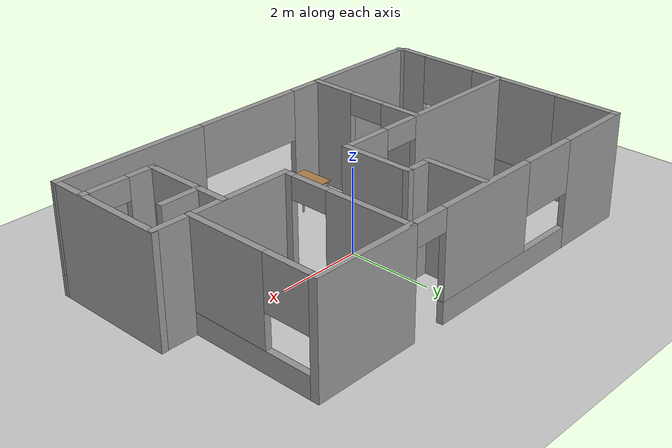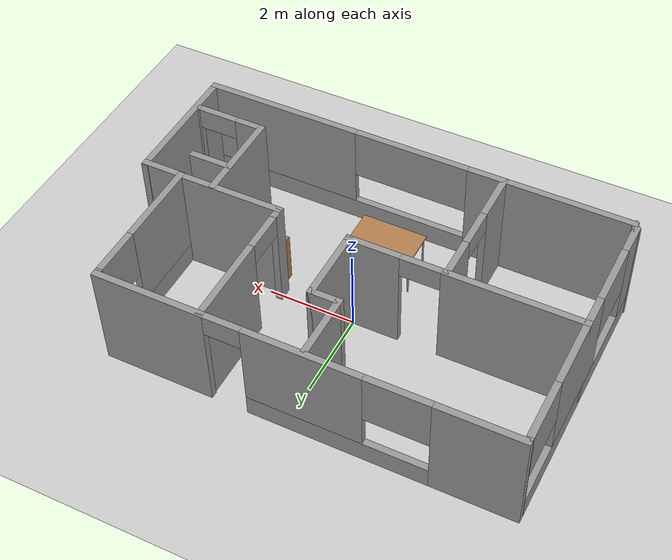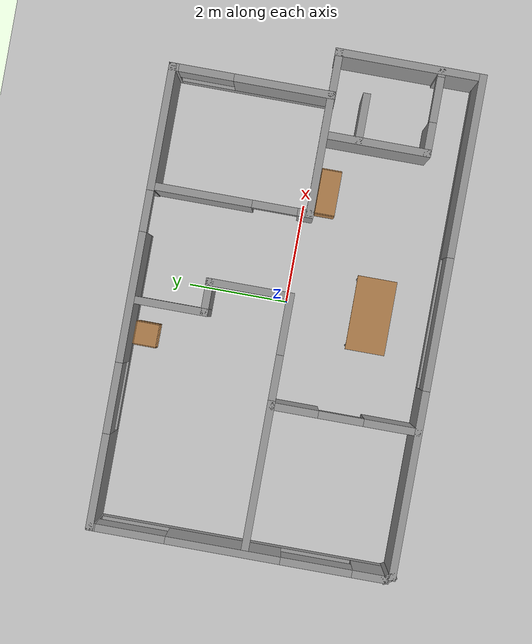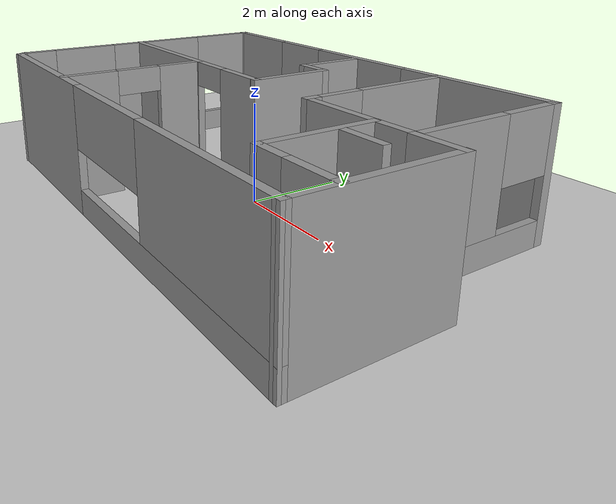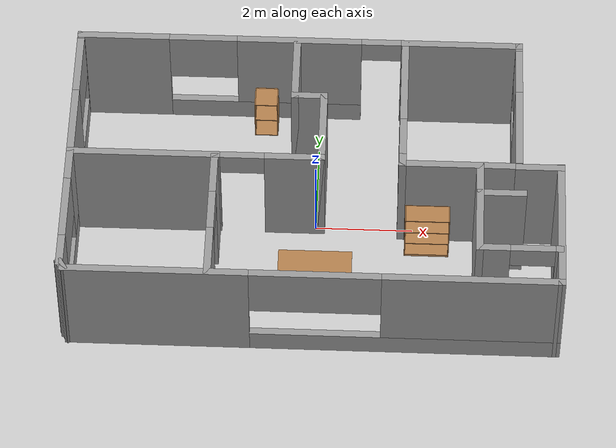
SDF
<sdf version="1.6">
 <world name="default">
  <light name="sun" type="directional">
   <pose>0 0 10 0 -0 0</pose>
   <diffuse>0.8 0.8 0.8 1</diffuse>
   <specular>0.2 0.2 0.2 1</specular>
   <attenuation>
    <range>1000</range>
    <constant>0.9</constant>
    <linear>0.01</linear>
    <quadratic>0.001</quadratic>
   </attenuation>
   <direction>-0.5 0.1 -0.9</direction>
  </light>
  <model name="ground_plane">
   <static>1</static>
   <link name="link">
    <collision name="collision">
     <geometry><plane><normal>0 0 1</normal><size>100 100</size></plane></geometry>
     <surface>
      <contact><collide_bitmask>65535</collide_bitmask></contact>
      <friction><ode><mu>100</mu><mu2>50</mu2></ode></friction>
     </surface>
    </collision>
    <visual name="visual">
     <cast_shadows>0</cast_shadows>
     <geometry><plane><normal>0 0 1</normal><size>100 100</size></plane></geometry>
     <material>
      <script><uri>file://media/materials/scripts/gazebo.material</uri><name>Gazebo/Grey</name></script>
     </material>
    </visual>
   </link>
  </model>
  <gravity>0 0 -9.8</gravity>
  <magnetic_field>6e-06 2.3e-05 -4.2e-05</magnetic_field>
  <atmosphere type="adiabatic"/>
  <physics name="default_physics" default="0" type="ode">
   <max_step_size>0.001</max_step_size>
   <real_time_factor>1</real_time_factor>
   <real_time_update_rate>1000</real_time_update_rate>
  </physics>
  <scene><ambient>0.4 0.4 0.4 1</ambient><background>0.7 0.7 0.7 1</background><shadows>1</shadows></scene>
  <spherical_coordinates>
   <surface_model>EARTH_WGS84</surface_model>
   <latitude_deg>0</latitude_deg>
   <longitude_deg>0</longitude_deg>
   <elevation>0</elevation>
   <heading_deg>0</heading_deg>
  </spherical_coordinates>
  <model name="HouseDoors">
   <pose>-0.013482 -0.00403 0 0 -0 0</pose>
   <include><static>true</static><uri>model://HouseDoors</uri></include>
  </model>
  <model name="bookshelf">
   <static>1</static>
   <link name="link">
    <inertial><mass>1</mass></inertial>
    <collision name="back">
     <pose>0 0.005 0.6 0 -0 0</pose>
     <geometry><box><size>0.9 0.01 1.2</size></box></geometry>
    </collision>
    <visual name="visual1">
     <pose>0 0.005 0.6 0 -0 0</pose>
     <geometry><box><size>0.9 0.01 1.2</size></box></geometry>
     <material>
      <script><uri>file://media/materials/scripts/gazebo.material</uri><name>Gazebo/Wood</name></script>
     </material>
    </visual>
    <collision name="left_side">
     <pose>0.45 -0.195 0.6 0 -0 0</pose>
     <geometry><box><size>0.02 0.4 1.2</size></box></geometry>
    </collision>
    <visual name="visual2">
     <pose>0.45 -0.195 0.6 0 -0 0</pose>
     <geometry><box><size>0.02 0.4 1.2</size></box></geometry>
     <material>
      <script><uri>file://media/materials/scripts/gazebo.material</uri><name>Gazebo/Wood</name></script>
     </material>
    </visual>
    <collision name="right_side">
     <pose>-0.45 -0.195 0.6 0 -0 0</pose>
     <geometry><box><size>0.02 0.4 1.2</size></box></geometry>
    </collision>
    <visual name="visual3">
     <pose>-0.45 -0.195 0.6 0 -0 0</pose>
     <geometry><box><size>0.02 0.4 1.2</size></box></geometry>
     <material>
      <script><uri>file://media/materials/scripts/gazebo.material</uri><name>Gazebo/Wood</name></script>
     </material>
    </visual>
    <collision name="bottom">
     <pose>0 -0.195 0.03 0 -0 0</pose>
     <geometry><box><size>0.88 0.4 0.06</size></box></geometry>
    </collision>
    <visual name="visual4">
     <pose>0 -0.195 0.03 0 -0 0</pose>
     <geometry><box><size>0.88 0.4 0.06</size></box></geometry>
     <material>
      <script><uri>file://media/materials/scripts/gazebo.material</uri><name>Gazebo/Wood</name></script>
     </material>
    </visual>
    <collision name="top">
     <pose>0 -0.195 1.19 0 -0 0</pose>
     <geometry><box><size>0.88 0.4 0.02</size></box></geometry>
    </collision>
    <visual name="visual5">
     <pose>0 -0.195 1.19 0 -0 0</pose>
     <geometry><box><size>0.88 0.4 0.02</size></box></geometry>
     <material>
      <script><uri>file://media/materials/scripts/gazebo.material</uri><name>Gazebo/Wood</name></script>
     </material>
    </visual>
    <collision name="low_shelf">
     <pose>0 -0.195 0.43 0 -0 0</pose>
     <geometry><box><size>0.88 0.4 0.02</size></box></geometry>
    </collision>
    <visual name="visual6">
     <pose>0 -0.195 0.43 0 -0 0</pose>
     <geometry><box><size>0.88 0.4 0.02</size></box></geometry>
     <material>
      <script><uri>file://media/materials/scripts/gazebo.material</uri><name>Gazebo/Wood</name></script>
     </material>
    </visual>
    <collision name="high_shelf">
     <pose>0 -0.195 0.8 0 -0 0</pose>
     <geometry><box><size>0.88 0.4 0.02</size></box></geometry>
    </collision>
    <visual name="visual7">
     <pose>0 -0.195 0.8 0 -0 0</pose>
     <geometry><box><size>0.88 0.4 0.02</size></box></geometry>
     <material>
      <script><uri>file://media/materials/scripts/gazebo.material</uri><name>Gazebo/Wood</name></script>
     </material>
    </visual>
   </link>
   <pose>2.30218 -0.242625 0 0 -0 0</pose>
  </model>
  <model name="cabinet">
   <static>1</static>
   <link name="cabinet_bottom_plate">
    <inertial>
     <pose>0 0 -1 0 -0 0</pose>
     <inertia><ixx>2.05</ixx><ixy>0</ixy><ixz>0</ixz><iyy>2.05</iyy><iyz>0</iyz><izz>2.05</izz></inertia>
     <mass>25</mass>
    </inertial>
    <collision name="cabinet_bottom_plate_geom">
     <pose>0 0 0.01 0 -0 0</pose>
     <geometry><box><size>0.45 0.45 0.02</size></box></geometry>
    </collision>
    <visual name="cabinet_bottom_plate_geom_visual">
     <pose>0 0 0.01 0 -0 0</pose>
     <geometry><box><size>0.45 0.45 0.02</size></box></geometry>
     <material>
      <script><uri>file://media/materials/scripts/gazebo.material</uri><name>Gazebo/Wood</name></script>
     </material>
    </visual>
    <collision name="cabinet_bottom_plate_geom_cabinet_back_plate">
     <pose>0.235 0 0.51 0 -0 0</pose>
     <geometry><box><size>0.02 0.45 1.02</size></box></geometry>
    </collision>
    <visual name="cabinet_bottom_plate_geom_cabinet_back_plate_visual">
     <pose>0.235 0 0.51 0 -0 0</pose>
     <geometry><box><size>0.02 0.45 1.02</size></box></geometry>
     <material>
      <script><uri>file://media/materials/scripts/gazebo.material</uri><name>Gazebo/Wood</name></script>
     </material>
    </visual>
    <collision name="cabinet_bottom_plate_geom_cabinet_left_plate">
     <pose>0 0.235 0.51 0 -0 0</pose>
     <geometry><box><size>0.45 0.02 1.02</size></box></geometry>
    </collision>
    <visual name="cabinet_bottom_plate_geom_cabinet_left_plate_visual">
     <pose>0 0.235 0.51 0 -0 0</pose>
     <geometry><box><size>0.45 0.02 1.02</size></box></geometry>
     <material>
      <script><uri>file://media/materials/scripts/gazebo.material</uri><name>Gazebo/Wood</name></script>
     </material>
    </visual>
    <collision name="cabinet_bottom_plate_geom_cabinet_middle_plate">
     <pose>0 0 0.51 0 -0 0</pose>
     <geometry><box><size>0.45 0.45 0.02</size></box></geometry>
    </collision>
    <visual name="cabinet_bottom_plate_geom_cabinet_middle_plate_visual">
     <pose>0 0 0.51 0 -0 0</pose>
     <geometry><box><size>0.45 0.45 0.02</size></box></geometry>
     <material>
      <script><uri>file://media/materials/scripts/gazebo.material</uri><name>Gazebo/Wood</name></script>
     </material>
    </visual>
    <collision name="cabinet_bottom_plate_geom_cabinet_right_plate">
     <pose>0 -0.235 0.51 0 -0 0</pose>
     <geometry><box><size>0.45 0.02 1.02</size></box></geometry>
    </collision>
    <visual name="cabinet_bottom_plate_geom_cabinet_right_plate_visual">
     <pose>0 -0.235 0.51 0 -0 0</pose>
     <geometry><box><size>0.45 0.02 1.02</size></box></geometry>
     <material>
      <script><uri>file://media/materials/scripts/gazebo.material</uri><name>Gazebo/Wood</name></script>
     </material>
    </visual>
    <collision name="cabinet_bottom_plate_geom_cabinet_top_plate">
     <pose>0 0 1.01 0 -0 0</pose>
     <geometry><box><size>0.45 0.45 0.02</size></box></geometry>
    </collision>
    <visual name="cabinet_bottom_plate_geom_cabinet_top_plate_visual">
     <pose>0 0 1.01 0 -0 0</pose>
     <geometry><box><size>0.45 0.45 0.02</size></box></geometry>
     <material>
      <script><uri>file://media/materials/scripts/gazebo.material</uri><name>Gazebo/Wood</name></script>
     </material>
    </visual>
   </link>
   <pose>-1.13112 2.6483 0 0 -0 1.56566</pose>
  </model>
  <model name="table">
   <static>1</static>
   <link name="link">
    <collision name="surface">
     <pose>0 0 1 0 -0 0</pose>
     <geometry><box><size>1.5 0.8 0.03</size></box></geometry>
     <surface><friction><ode><mu>0.6</mu><mu2>0.6</mu2></ode></friction></surface>
    </collision>
    <visual name="visual1">
     <pose>0 0 1 0 -0 0</pose>
     <geometry><box><size>1.5 0.8 0.03</size></box></geometry>
     <material>
      <script><uri>file://media/materials/scripts/gazebo.material</uri><name>Gazebo/Wood</name></script>
     </material>
    </visual>
    <collision name="front_left_leg">
     <pose>0.68 0.38 0.5 0 -0 0</pose>
     <geometry><cylinder><radius>0.02</radius><length>1</length></cylinder></geometry>
    </collision>
    <visual name="front_left_leg">
     <pose>0.68 0.38 0.5 0 -0 0</pose>
     <geometry><cylinder><radius>0.02</radius><length>1</length></cylinder></geometry>
     <material>
      <script><uri>file://media/materials/scripts/gazebo.material</uri><name>Gazebo/Grey</name></script>
     </material>
    </visual>
    <collision name="front_right_leg">
     <pose>0.68 -0.38 0.5 0 -0 0</pose>
     <geometry><cylinder><radius>0.02</radius><length>1</length></cylinder></geometry>
    </collision>
    <visual name="front_right_leg">
     <pose>0.68 -0.38 0.5 0 -0 0</pose>
     <geometry><cylinder><radius>0.02</radius><length>1</length></cylinder></geometry>
     <material>
      <script><uri>file://media/materials/scripts/gazebo.material</uri><name>Gazebo/Grey</name></script>
     </material>
    </visual>
    <collision name="back_right_leg">
     <pose>-0.68 -0.38 0.5 0 -0 0</pose>
     <geometry><cylinder><radius>0.02</radius><length>1</length></cylinder></geometry>
    </collision>
    <visual name="back_right_leg">
     <pose>-0.68 -0.38 0.5 0 -0 0</pose>
     <geometry><cylinder><radius>0.02</radius><length>1</length></cylinder></geometry>
     <material>
      <script><uri>file://media/materials/scripts/gazebo.material</uri><name>Gazebo/Grey</name></script>
     </material>
    </visual>
    <collision name="back_left_leg">
     <pose>-0.68 0.38 0.5 0 -0 0</pose>
     <geometry><cylinder><radius>0.02</radius><length>1</length></cylinder></geometry>
    </collision>
    <visual name="back_left_leg">
     <pose>-0.68 0.38 0.5 0 -0 0</pose>
     <geometry><cylinder><radius>0.02</radius><length>1</length></cylinder></geometry>
     <material>
      <script><uri>file://media/materials/scripts/gazebo.material</uri><name>Gazebo/Grey</name></script>
     </material>
    </visual>
   </link>
   <pose>0.034561 -1.71936 0 0 -0 0</pose>
  </model>
 </world>
</sdf>

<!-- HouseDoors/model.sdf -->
<sdf version='1.6'>
  <model name='HouseDoors'>
    <pose frame=''>-0.013482 -0.004027 0 0 -0 0</pose>
    <link name='Wall_30'>
      <pose frame=''>0.053047 -2.98078 0 0 -0 -0.001213</pose>
      <visual name='Wall_30_Visual_0'>
        <pose frame=''>-3.13618 0 1.25 0 -0 0</pose>
        <geometry>
          <box>
            <size>3.74957 0.15 2.5</size>
          </box>
        </geometry>
        <material>
          <script>
            <uri>file://media/materials/scripts/gazebo.material</uri>
            <name>Gazebo/Grey</name>
          </script>
          <ambient>1 1 1 1</ambient>
        </material>
        <meta>
          <layer>0</layer>
        </meta>
      </visual>
      <collision name='Wall_30_Collision_0'>
        <geometry>
          <box>
            <size>3.74957 0.15 2.5</size>
          </box>
        </geometry>
        <pose frame=''>-3.13618 0 1.25 0 -0 0</pose>
      </collision>
      <visual name='Wall_30_Visual_1'>
        <pose frame=''>1.87479 0 0.25 0 -0 0</pose>
        <geometry>
          <box>
            <size>6.27236 0.15 0.5</size>
          </box>
        </geometry>
        <material>
          <script>
            <uri>file://media/materials/scripts/gazebo.material</uri>
            <name>Gazebo/Grey</name>
          </script>
          <ambient>1 1 1 1</ambient>
        </material>
        <meta>
          <layer>0</layer>
        </meta>
      </visual>
      <collision name='Wall_30_Collision_1'>
        <geometry>
          <box>
            <size>6.27236 0.15 0.5</size>
          </box>
        </geometry>
        <pose frame=''>1.87479 0 0.25 0 -0 0</pose>
      </collision>
      <visual name='Wall_30_Visual_2'>
        <pose frame=''>3.19383 0 1.5 0 -0 0</pose>
        <geometry>
          <box>
            <size>3.63428 0.15 2</size>
          </box>
        </geometry>
        <material>
          <script>
            <uri>file://media/materials/scripts/gazebo.material</uri>
            <name>Gazebo/Grey</name>
          </script>
          <ambient>1 1 1 1</ambient>
        </material>
        <meta>
          <layer>0</layer>
        </meta>
      </visual>
      <collision name='Wall_30_Collision_2'>
        <geometry>
          <box>
            <size>3.63428 0.15 2</size>
          </box>
        </geometry>
        <pose frame=''>3.19383 0 1.5 0 -0 0</pose>
      </collision>
      <visual name='Wall_30_Visual_3'>
        <pose frame=''>0.057646 0 1.9 0 -0 0</pose>
        <geometry>
          <box>
            <size>2.63808 0.15 1.2</size>
          </box>
        </geometry>
        <material>
          <script>
            <uri>file://media/materials/scripts/gazebo.material</uri>
            <name>Gazebo/Grey</name>
          </script>
          <ambient>1 1 1 1</ambient>
        </material>
        <meta>
          <layer>0</layer>
        </meta>
      </visual>
      <collision name='Wall_30_Collision_3'>
        <geometry>
          <box>
            <size>2.63808 0.15 1.2</size>
          </box>
        </geometry>
        <pose frame=''>0.057646 0 1.9 0 -0 0</pose>
      </collision>
    </link>
    <link name='Wall_33'>
      <pose frame=''>-4.96099 0.077905 0 0 -0 -1.5708</pose>
      <visual name='Wall_33_Visual_0'>
        <pose frame=''>-2.91122 0 1.25 0 -0 0</pose>
        <geometry>
          <box>
            <size>0.17755 0.15 2.5</size>
          </box>
        </geometry>
        <material>
          <script>
            <uri>file://media/materials/scripts/gazebo.material</uri>
            <name>Gazebo/Grey</name>
          </script>
          <ambient>1 1 1 1</ambient>
        </material>
        <meta>
          <layer>0</layer>
        </meta>
      </visual>
      <collision name='Wall_33_Collision_0'>
        <geometry>
          <box>
            <size>0.17755 0.15 2.5</size>
          </box>
        </geometry>
        <pose frame=''>-2.91122 0 1.25 0 -0 0</pose>
      </collision>
      <visual name='Wall_33_Visual_1'>
        <pose frame=''>0.088775 0 0.25 0 -0 0</pose>
        <geometry>
          <box>
            <size>5.82245 0.15 0.5</size>
          </box>
        </geometry>
        <material>
          <script>
            <uri>file://media/materials/scripts/gazebo.material</uri>
            <name>Gazebo/Grey</name>
          </script>
          <ambient>1 1 1 1</ambient>
        </material>
        <meta>
          <layer>0</layer>
        </meta>
      </visual>
      <collision name='Wall_33_Collision_1'>
        <geometry>
          <box>
            <size>5.82245 0.15 0.5</size>
          </box>
        </geometry>
        <pose frame=''>0.088775 0 0.25 0 -0 0</pose>
      </collision>
      <visual name='Wall_33_Visual_2'>
        <pose frame=''>-0.299837 0 1.5 0 -0 0</pose>
        <geometry>
          <box>
            <size>2.28143 0.15 2</size>
          </box>
        </geometry>
        <material>
          <script>
            <uri>file://media/materials/scripts/gazebo.material</uri>
            <name>Gazebo/Grey</name>
          </script>
          <ambient>1 1 1 1</ambient>
        </material>
        <meta>
          <layer>0</layer>
        </meta>
      </visual>
      <collision name='Wall_33_Collision_2'>
        <geometry>
          <box>
            <size>2.28143 0.15 2</size>
          </box>
        </geometry>
        <pose frame=''>-0.299837 0 1.5 0 -0 0</pose>
      </collision>
      <visual name='Wall_33_Visual_3'>
        <pose frame=''>2.63123 0 1.5 0 -0 0</pose>
        <geometry>
          <box>
            <size>0.73755 0.15 2</size>
          </box>
        </geometry>
        <material>
          <script>
            <uri>file://media/materials/scripts/gazebo.material</uri>
            <name>Gazebo/Grey</name>
          </script>
          <ambient>1 1 1 1</ambient>
        </material>
        <meta>
          <layer>0</layer>
        </meta>
      </visual>
      <collision name='Wall_33_Collision_3'>
        <geometry>
          <box>
            <size>0.73755 0.15 2</size>
          </box>
        </geometry>
        <pose frame=''>2.63123 0 1.5 0 -0 0</pose>
      </collision>
      <visual name='Wall_33_Visual_4'>
        <pose frame=''>-2.1315 0 1.9 0 -0 0</pose>
        <geometry>
          <box>
            <size>1.3819 0.15 1.2</size>
          </box>
        </geometry>
        <material>
          <script>
            <uri>file://media/materials/scripts/gazebo.material</uri>
            <name>Gazebo/Grey</name>
          </script>
          <ambient>1 1 1 1</ambient>
        </material>
        <meta>
          <layer>0</layer>
        </meta>
      </visual>
      <collision name='Wall_33_Collision_4'>
        <geometry>
          <box>
            <size>1.3819 0.15 1.2</size>
          </box>
        </geometry>
        <pose frame=''>-2.1315 0 1.9 0 -0 0</pose>
      </collision>
      <visual name='Wall_33_Visual_5'>
        <pose frame=''>1.55166 0 1.9 0 -0 0</pose>
        <geometry>
          <box>
            <size>1.42158 0.15 1.2</size>
          </box>
        </geometry>
        <material>
          <script>
            <uri>file://media/materials/scripts/gazebo.material</uri>
            <name>Gazebo/Grey</name>
          </script>
          <ambient>1 1 1 1</ambient>
        </material>
        <meta>
          <layer>0</layer>
        </meta>
      </visual>
      <collision name='Wall_33_Collision_5'>
        <geometry>
          <box>
            <size>1.42158 0.15 1.2</size>
          </box>
        </geometry>
        <pose frame=''>1.55166 0 1.9 0 -0 0</pose>
      </collision>
    </link>
    <link name='Wall_34'>
      <collision name='Wall_34_Collision'>
        <geometry>
          <box>
            <size>0.299676 0.15 2.5</size>
          </box>
        </geometry>
        <pose frame=''>0 0 1.25 0 -0 0</pose>
      </collision>
      <visual name='Wall_34_Visual'>
        <pose frame=''>0 0 1.25 0 -0 0</pose>
        <geometry>
          <box>
            <size>0.299676 0.15 2.5</size>
          </box>
        </geometry>
        <material>
          <script>
            <uri>file://media/materials/scripts/gazebo.material</uri>
            <name>Gazebo/Grey</name>
          </script>
          <ambient>1 1 1 1</ambient>
        </material>
        <meta>
          <layer>0</layer>
        </meta>
      </visual>
      <pose frame=''>-4.92195 -2.91094 0 0 -0 -1.02204</pose>
    </link>
    <link name='Wall_36'>
      <pose frame=''>-0.410991 3.00291 0 0 -0 0</pose>
      <visual name='Wall_36_Visual_0'>
        <pose frame=''>-3.66999 0 1.25 0 -0 0</pose>
        <geometry>
          <box>
            <size>1.91003 0.15 2.5</size>
          </box>
        </geometry>
        <material>
          <script>
            <uri>file://media/materials/scripts/gazebo.material</uri>
            <name>Gazebo/Grey</name>
          </script>
          <ambient>1 1 1 1</ambient>
        </material>
        <meta>
          <layer>0</layer>
        </meta>
      </visual>
      <collision name='Wall_36_Collision_0'>
        <geometry>
          <box>
            <size>1.91003 0.15 2.5</size>
          </box>
        </geometry>
        <pose frame=''>-3.66999 0 1.25 0 -0 0</pose>
      </collision>
      <visual name='Wall_36_Visual_1'>
        <pose frame=''>3.36376 0 1.25 0 -0 0</pose>
        <geometry>
          <box>
            <size>2.52248 0.15 2.5</size>
          </box>
        </geometry>
        <material>
          <script>
            <uri>file://media/materials/scripts/gazebo.material</uri>
            <name>Gazebo/Grey</name>
          </script>
          <ambient>1 1 1 1</ambient>
        </material>
        <meta>
          <layer>0</layer>
        </meta>
      </visual>
      <collision name='Wall_36_Collision_1'>
        <geometry>
          <box>
            <size>2.52248 0.15 2.5</size>
          </box>
        </geometry>
        <pose frame=''>3.36376 0 1.25 0 -0 0</pose>
      </collision>
      <visual name='Wall_36_Visual_2'>
        <pose frame=''>-0.71655 0 0.25 0 -0 0</pose>
        <geometry>
          <box>
            <size>3.99685 0.15 0.5</size>
          </box>
        </geometry>
        <material>
          <script>
            <uri>file://media/materials/scripts/gazebo.material</uri>
            <name>Gazebo/Grey</name>
          </script>
          <ambient>1 1 1 1</ambient>
        </material>
        <meta>
          <layer>0</layer>
        </meta>
      </visual>
      <collision name='Wall_36_Collision_2'>
        <geometry>
          <box>
            <size>3.99685 0.15 0.5</size>
          </box>
        </geometry>
        <pose frame=''>-0.71655 0 0.25 0 -0 0</pose>
      </collision>
      <visual name='Wall_36_Visual_3'>
        <pose frame=''>-0.012375 0 1.5 0 -0 0</pose>
        <geometry>
          <box>
            <size>2.5885 0.15 2</size>
          </box>
        </geometry>
        <material>
          <script>
            <uri>file://media/materials/scripts/gazebo.material</uri>
            <name>Gazebo/Grey</name>
          </script>
          <ambient>1 1 1 1</ambient>
        </material>
        <meta>
          <layer>0</layer>
        </meta>
      </visual>
      <collision name='Wall_36_Collision_3'>
        <geometry>
          <box>
            <size>2.5885 0.15 2</size>
          </box>
        </geometry>
        <pose frame=''>-0.012375 0 1.5 0 -0 0</pose>
      </collision>
      <visual name='Wall_36_Visual_4'>
        <pose frame=''>-2.0108 0 1.9 0 -0 0</pose>
        <geometry>
          <box>
            <size>1.40835 0.15 1.2</size>
          </box>
        </geometry>
        <material>
          <script>
            <uri>file://media/materials/scripts/gazebo.material</uri>
            <name>Gazebo/Grey</name>
          </script>
          <ambient>1 1 1 1</ambient>
        </material>
        <meta>
          <layer>0</layer>
        </meta>
      </visual>
      <collision name='Wall_36_Collision_4'>
        <geometry>
          <box>
            <size>1.40835 0.15 1.2</size>
          </box>
        </geometry>
        <pose frame=''>-2.0108 0 1.9 0 -0 0</pose>
      </collision>
      <visual name='Wall_36_Visual_5'>
        <pose frame=''>1.6922 0 2.25 0 -0 0</pose>
        <geometry>
          <box>
            <size>0.82065 0.15 0.5</size>
          </box>
        </geometry>
        <material>
          <script>
            <uri>file://media/materials/scripts/gazebo.material</uri>
            <name>Gazebo/Grey</name>
          </script>
          <ambient>1 1 1 1</ambient>
        </material>
        <meta>
          <layer>0</layer>
        </meta>
      </visual>
      <collision name='Wall_36_Collision_5'>
        <geometry>
          <box>
            <size>0.82065 0.15 0.5</size>
          </box>
        </geometry>
        <pose frame=''>1.6922 0 2.25 0 -0 0</pose>
      </collision>
    </link>
    <link name='Wall_37'>
      <pose frame=''>4.13901 1.43307 0 0 -0 -1.5708</pose>
      <visual name='Wall_37_Visual_0'>
        <pose frame=''>-1.54522 0 1.25 0 -0 0</pose>
        <geometry>
          <box>
            <size>0.199238 0.15 2.5</size>
          </box>
        </geometry>
        <material>
          <script>
            <uri>file://media/materials/scripts/gazebo.material</uri>
            <name>Gazebo/Grey</name>
          </script>
          <ambient>1 1 1 1</ambient>
        </material>
        <meta>
          <layer>0</layer>
        </meta>
      </visual>
      <collision name='Wall_37_Collision_0'>
        <geometry>
          <box>
            <size>0.199238 0.15 2.5</size>
          </box>
        </geometry>
        <pose frame=''>-1.54522 0 1.25 0 -0 0</pose>
      </collision>
      <visual name='Wall_37_Visual_1'>
        <pose frame=''>0.099619 0 0.25 0 -0 0</pose>
        <geometry>
          <box>
            <size>3.09044 0.15 0.5</size>
          </box>
        </geometry>
        <material>
          <script>
            <uri>file://media/materials/scripts/gazebo.material</uri>
            <name>Gazebo/Grey</name>
          </script>
          <ambient>1 1 1 1</ambient>
        </material>
        <meta>
          <layer>0</layer>
        </meta>
      </visual>
      <collision name='Wall_37_Collision_1'>
        <geometry>
          <box>
            <size>3.09044 0.15 0.5</size>
          </box>
        </geometry>
        <pose frame=''>0.099619 0 0.25 0 -0 0</pose>
      </collision>
      <visual name='Wall_37_Visual_2'>
        <pose frame=''>0.645094 0 1.5 0 -0 0</pose>
        <geometry>
          <box>
            <size>1.99949 0.15 2</size>
          </box>
        </geometry>
        <material>
          <script>
            <uri>file://media/materials/scripts/gazebo.material</uri>
            <name>Gazebo/Grey</name>
          </script>
          <ambient>1 1 1 1</ambient>
        </material>
        <meta>
          <layer>0</layer>
        </meta>
      </visual>
      <collision name='Wall_37_Collision_2'>
        <geometry>
          <box>
            <size>1.99949 0.15 2</size>
          </box>
        </geometry>
        <pose frame=''>0.645094 0 1.5 0 -0 0</pose>
      </collision>
      <visual name='Wall_37_Visual_3'>
        <pose frame=''>-0.900125 0 1.9 0 -0 0</pose>
        <geometry>
          <box>
            <size>1.09095 0.15 1.2</size>
          </box>
        </geometry>
        <material>
          <script>
            <uri>file://media/materials/scripts/gazebo.material</uri>
            <name>Gazebo/Grey</name>
          </script>
          <ambient>1 1 1 1</ambient>
        </material>
        <meta>
          <layer>0</layer>
        </meta>
      </visual>
      <collision name='Wall_37_Collision_3'>
        <geometry>
          <box>
            <size>1.09095 0.15 1.2</size>
          </box>
        </geometry>
        <pose frame=''>-0.900125 0 1.9 0 -0 0</pose>
      </collision>
    </link>
    <link name='Wall_38'>
      <collision name='Wall_38_Collision'>
        <geometry>
          <box>
            <size>1 0.15 2.5</size>
          </box>
        </geometry>
        <pose frame=''>0 0 1.25 0 -0 0</pose>
      </collision>
      <visual name='Wall_38_Visual'>
        <pose frame=''>0 0 1.25 0 -0 0</pose>
        <geometry>
          <box>
            <size>1 0.15 2.5</size>
          </box>
        </geometry>
        <material>
          <script>
            <uri>file://media/materials/scripts/gazebo.material</uri>
            <name>Gazebo/Grey</name>
          </script>
          <ambient>1 1 1 1</ambient>
        </material>
        <meta>
          <layer>0</layer>
        </meta>
      </visual>
      <pose frame=''>4.56401 -0.149995 0 0 -0 0</pose>
    </link>
    <link name='Wall_39'>
      <collision name='Wall_39_Collision'>
        <geometry>
          <box>
            <size>3 0.15 2.5</size>
          </box>
        </geometry>
        <pose frame=''>0 0 1.25 0 -0 0</pose>
      </collision>
      <visual name='Wall_39_Visual'>
        <pose frame=''>0 0 1.25 0 -0 0</pose>
        <geometry>
          <box>
            <size>3 0.15 2.5</size>
          </box>
        </geometry>
        <material>
          <script>
            <uri>file://media/materials/scripts/gazebo.material</uri>
            <name>Gazebo/Grey</name>
          </script>
          <ambient>1 1 1 1</ambient>
        </material>
        <meta>
          <layer>0</layer>
        </meta>
      </visual>
      <pose frame=''>4.98901 -1.56177 0 0 -0 -1.5708</pose>
    </link>
    <link name='Wall_41'>
      <pose frame=''>-2.41099 -0.05207 0 0 -0 0</pose>
      <visual name='Wall_41_Visual_0'>
        <pose frame=''>-1.0668 0 1.25 0 -0 0</pose>
        <geometry>
          <box>
            <size>3.1164 0.15 2.5</size>
          </box>
        </geometry>
        <material>
          <script>
            <uri>file://media/materials/scripts/gazebo.material</uri>
            <name>Gazebo/Grey</name>
          </script>
          <ambient>1 1 1 1</ambient>
        </material>
        <meta>
          <layer>0</layer>
        </meta>
      </visual>
      <collision name='Wall_41_Collision_0'>
        <geometry>
          <box>
            <size>3.1164 0.15 2.5</size>
          </box>
        </geometry>
        <pose frame=''>-1.0668 0 1.25 0 -0 0</pose>
      </collision>
      <visual name='Wall_41_Visual_1'>
        <pose frame=''>2.0082 0 1.25 0 -0 0</pose>
        <geometry>
          <box>
            <size>1.2336 0.15 2.5</size>
          </box>
        </geometry>
        <material>
          <script>
            <uri>file://media/materials/scripts/gazebo.material</uri>
            <name>Gazebo/Grey</name>
          </script>
          <ambient>1 1 1 1</ambient>
        </material>
        <meta>
          <layer>0</layer>
        </meta>
      </visual>
      <collision name='Wall_41_Collision_1'>
        <geometry>
          <box>
            <size>1.2336 0.15 2.5</size>
          </box>
        </geometry>
        <pose frame=''>2.0082 0 1.25 0 -0 0</pose>
      </collision>
      <visual name='Wall_41_Visual_2'>
        <pose frame=''>0.9414 0 2.25 0 -0 0</pose>
        <geometry>
          <box>
            <size>0.9 0.15 0.5</size>
          </box>
        </geometry>
        <material>
          <script>
            <uri>file://media/materials/scripts/gazebo.material</uri>
            <name>Gazebo/Grey</name>
          </script>
          <ambient>1 1 1 1</ambient>
        </material>
        <meta>
          <layer>0</layer>
        </meta>
      </visual>
      <collision name='Wall_41_Collision_2'>
        <geometry>
          <box>
            <size>0.9 0.15 0.5</size>
          </box>
        </geometry>
        <pose frame=''>0.9414 0 2.25 0 -0 0</pose>
      </collision>
    </link>
    <link name='Wall_42'>
      <collision name='Wall_42_Collision'>
        <geometry>
          <box>
            <size>1.75 0.15 2.5</size>
          </box>
        </geometry>
        <pose frame=''>0 0 1.25 0 -0 0</pose>
      </collision>
      <visual name='Wall_42_Visual'>
        <pose frame=''>0 0 1.25 0 -0 0</pose>
        <geometry>
          <box>
            <size>1.75 0.15 2.5</size>
          </box>
        </geometry>
        <material>
          <script>
            <uri>file://media/materials/scripts/gazebo.material</uri>
            <name>Gazebo/Grey</name>
          </script>
          <ambient>1 1 1 1</ambient>
        </material>
        <meta>
          <layer>0</layer>
        </meta>
      </visual>
      <pose frame=''>0.139009 0.74793 0 0 -0 1.5708</pose>
    </link>
    <link name='Wall_43'>
      <collision name='Wall_43_Collision'>
        <geometry>
          <box>
            <size>0.75 0.15 2.5</size>
          </box>
        </geometry>
        <pose frame=''>0 0 1.25 0 -0 0</pose>
      </collision>
      <visual name='Wall_43_Visual'>
        <pose frame=''>0 0 1.25 0 -0 0</pose>
        <geometry>
          <box>
            <size>0.75 0.15 2.5</size>
          </box>
        </geometry>
        <material>
          <script>
            <uri>file://media/materials/scripts/gazebo.material</uri>
            <name>Gazebo/Grey</name>
          </script>
          <ambient>1 1 1 1</ambient>
        </material>
        <meta>
          <layer>0</layer>
        </meta>
      </visual>
      <pose frame=''>-0.160991 1.54793 0 0 -0 3.14159</pose>
    </link>
    <link name='Wall_45'>
      <collision name='Wall_45_Collision'>
        <geometry>
          <box>
            <size>1.5 0.15 2.5</size>
          </box>
        </geometry>
        <pose frame=''>0 0 1.25 0 -0 0</pose>
      </collision>
      <visual name='Wall_45_Visual'>
        <pose frame=''>0 0 1.25 0 -0 0</pose>
        <geometry>
          <box>
            <size>1.5 0.15 2.5</size>
          </box>
        </geometry>
        <material>
          <script>
            <uri>file://media/materials/scripts/gazebo.material</uri>
            <name>Gazebo/Grey</name>
          </script>
          <ambient>1 1 1 1</ambient>
        </material>
        <meta>
          <layer>0</layer>
        </meta>
      </visual>
      <pose frame=''>-0.46099 2.22293 0 0 -0 1.5708</pose>
    </link>
    <link name='Wall_47'>
      <pose frame=''>-2.02504 -1.52334 0 0 -0 1.5708</pose>
      <visual name='Wall_47_Visual_0'>
        <pose frame=''>-0.933675 0 1.25 0 -0 0</pose>
        <geometry>
          <box>
            <size>1.13265 0.15 2.5</size>
          </box>
        </geometry>
        <material>
          <script>
            <uri>file://media/materials/scripts/gazebo.material</uri>
            <name>Gazebo/Grey</name>
          </script>
          <ambient>1 1 1 1</ambient>
        </material>
        <meta>
          <layer>0</layer>
        </meta>
      </visual>
      <collision name='Wall_47_Collision_0'>
        <geometry>
          <box>
            <size>1.13265 0.15 2.5</size>
          </box>
        </geometry>
        <pose frame=''>-0.933675 0 1.25 0 -0 0</pose>
      </collision>
      <visual name='Wall_47_Visual_1'>
        <pose frame=''>1.01632 0 1.25 0 -0 0</pose>
        <geometry>
          <box>
            <size>0.96735 0.15 2.5</size>
          </box>
        </geometry>
        <material>
          <script>
            <uri>file://media/materials/scripts/gazebo.material</uri>
            <name>Gazebo/Grey</name>
          </script>
          <ambient>1 1 1 1</ambient>
        </material>
        <meta>
          <layer>0</layer>
        </meta>
      </visual>
      <collision name='Wall_47_Collision_1'>
        <geometry>
          <box>
            <size>0.96735 0.15 2.5</size>
          </box>
        </geometry>
        <pose frame=''>1.01632 0 1.25 0 -0 0</pose>
      </collision>
      <visual name='Wall_47_Visual_2'>
        <pose frame=''>0.08265 0 2.25 0 -0 0</pose>
        <geometry>
          <box>
            <size>0.9 0.15 0.5</size>
          </box>
        </geometry>
        <material>
          <script>
            <uri>file://media/materials/scripts/gazebo.material</uri>
            <name>Gazebo/Grey</name>
          </script>
          <ambient>1 1 1 1</ambient>
        </material>
        <meta>
          <layer>0</layer>
        </meta>
      </visual>
      <collision name='Wall_47_Collision_2'>
        <geometry>
          <box>
            <size>0.9 0.15 0.5</size>
          </box>
        </geometry>
        <pose frame=''>0.08265 0 2.25 0 -0 0</pose>
      </collision>
    </link>
    <link name='Wall_49'>
      <pose frame=''>1.78376 1.41323 0 0 -0 -1.5708</pose>
      <visual name='Wall_49_Visual_0'>
        <pose frame=''>-0.609025 0 1.25 0 -0 0</pose>
        <geometry>
          <box>
            <size>2.03195 0.15 2.5</size>
          </box>
        </geometry>
        <material>
          <script>
            <uri>file://media/materials/scripts/gazebo.material</uri>
            <name>Gazebo/Grey</name>
          </script>
          <ambient>1 1 1 1</ambient>
        </material>
        <meta>
          <layer>0</layer>
        </meta>
      </visual>
      <collision name='Wall_49_Collision_0'>
        <geometry>
          <box>
            <size>2.03195 0.15 2.5</size>
          </box>
        </geometry>
        <pose frame=''>-0.609025 0 1.25 0 -0 0</pose>
      </collision>
      <visual name='Wall_49_Visual_1'>
        <pose frame=''>1.46598 0 1.25 0 -0 0</pose>
        <geometry>
          <box>
            <size>0.31805 0.15 2.5</size>
          </box>
        </geometry>
        <material>
          <script>
            <uri>file://media/materials/scripts/gazebo.material</uri>
            <name>Gazebo/Grey</name>
          </script>
          <ambient>1 1 1 1</ambient>
        </material>
        <meta>
          <layer>0</layer>
        </meta>
      </visual>
      <collision name='Wall_49_Collision_1'>
        <geometry>
          <box>
            <size>0.31805 0.15 2.5</size>
          </box>
        </geometry>
        <pose frame=''>1.46598 0 1.25 0 -0 0</pose>
      </collision>
      <visual name='Wall_49_Visual_2'>
        <pose frame=''>0.85695 0 2.25 0 -0 0</pose>
        <geometry>
          <box>
            <size>0.9 0.15 0.5</size>
          </box>
        </geometry>
        <material>
          <script>
            <uri>file://media/materials/scripts/gazebo.material</uri>
            <name>Gazebo/Grey</name>
          </script>
          <ambient>1 1 1 1</ambient>
        </material>
        <meta>
          <layer>0</layer>
        </meta>
      </visual>
      <collision name='Wall_49_Collision_2'>
        <geometry>
          <box>
            <size>0.9 0.15 0.5</size>
          </box>
        </geometry>
        <pose frame=''>0.85695 0 2.25 0 -0 0</pose>
      </collision>
    </link>
    <link name='Wall_50'>
      <collision name='Wall_50_Collision'>
        <geometry>
          <box>
            <size>2.5 0.15 2.5</size>
          </box>
        </geometry>
        <pose frame=''>0 0 1.25 0 -0 0</pose>
      </collision>
      <visual name='Wall_50_Visual'>
        <pose frame=''>0 0 1.25 0 -0 0</pose>
        <geometry>
          <box>
            <size>2.5 0.15 2.5</size>
          </box>
        </geometry>
        <material>
          <script>
            <uri>file://media/materials/scripts/gazebo.material</uri>
            <name>Gazebo/Grey</name>
          </script>
          <ambient>1 1 1 1</ambient>
        </material>
        <meta>
          <layer>0</layer>
        </meta>
      </visual>
      <pose frame=''>2.95876 -0.13677 0 0 -0 0</pose>
    </link>
    <link name='Wall_52'>
      <collision name='Wall_52_Collision'>
        <geometry>
          <box>
            <size>2.17069 0.15 2.5</size>
          </box>
        </geometry>
        <pose frame=''>0 0 1.25 0 -0 0</pose>
      </collision>
      <visual name='Wall_52_Visual'>
        <pose frame=''>0 0 1.25 0 -0 0</pose>
        <geometry>
          <box>
            <size>2.17069 0.15 2.5</size>
          </box>
        </geometry>
        <material>
          <script>
            <uri>file://media/materials/scripts/gazebo.material</uri>
            <name>Gazebo/Grey</name>
          </script>
          <ambient>1 1 1 1</ambient>
        </material>
        <meta>
          <layer>0</layer>
        </meta>
      </visual>
      <pose frame=''>3.35753 -1.1682 0 0 -0 -1.5708</pose>
    </link>
    <link name='Wall_53'>
      <pose frame=''>4.15754 -2.17852 0 0 -0 0</pose>
      <visual name='Wall_53_Visual_0'>
        <pose frame=''>-0.5335 0 1.25 0 -0 0</pose>
        <geometry>
          <box>
            <size>0.683 0.15 2.5</size>
          </box>
        </geometry>
        <material>
          <script>
            <uri>file://media/materials/scripts/gazebo.material</uri>
            <name>Gazebo/Grey</name>
          </script>
          <ambient>1 1 1 1</ambient>
        </material>
        <meta>
          <layer>0</layer>
        </meta>
      </visual>
      <collision name='Wall_53_Collision_0'>
        <geometry>
          <box>
            <size>0.683 0.15 2.5</size>
          </box>
        </geometry>
        <pose frame=''>-0.5335 0 1.25 0 -0 0</pose>
      </collision>
      <visual name='Wall_53_Visual_1'>
        <pose frame=''>0.7915 0 1.25 0 -0 0</pose>
        <geometry>
          <box>
            <size>0.167 0.15 2.5</size>
          </box>
        </geometry>
        <material>
          <script>
            <uri>file://media/materials/scripts/gazebo.material</uri>
            <name>Gazebo/Grey</name>
          </script>
          <ambient>1 1 1 1</ambient>
        </material>
        <meta>
          <layer>0</layer>
        </meta>
      </visual>
      <collision name='Wall_53_Collision_1'>
        <geometry>
          <box>
            <size>0.167 0.15 2.5</size>
          </box>
        </geometry>
        <pose frame=''>0.7915 0 1.25 0 -0 0</pose>
      </collision>
      <visual name='Wall_53_Visual_2'>
        <pose frame=''>0.258 0 2.25 0 -0 0</pose>
        <geometry>
          <box>
            <size>0.9 0.15 0.5</size>
          </box>
        </geometry>
        <material>
          <script>
            <uri>file://media/materials/scripts/gazebo.material</uri>
            <name>Gazebo/Grey</name>
          </script>
          <ambient>1 1 1 1</ambient>
        </material>
        <meta>
          <layer>0</layer>
        </meta>
      </visual>
      <collision name='Wall_53_Collision_2'>
        <geometry>
          <box>
            <size>0.9 0.15 0.5</size>
          </box>
        </geometry>
        <pose frame=''>0.258 0 2.25 0 -0 0</pose>
      </collision>
    </link>
    <link name='Wall_55'>
      <collision name='Wall_55_Collision'>
        <geometry>
          <box>
            <size>1 0.15 2.5</size>
          </box>
        </geometry>
        <pose frame=''>0 0 1.25 0 -0 0</pose>
      </collision>
      <visual name='Wall_55_Visual'>
        <pose frame=''>0 0 1.25 0 -0 0</pose>
        <geometry>
          <box>
            <size>1 0.15 2.5</size>
          </box>
        </geometry>
        <material>
          <script>
            <uri>file://media/materials/scripts/gazebo.material</uri>
            <name>Gazebo/Grey</name>
          </script>
          <ambient>1 1 1 1</ambient>
        </material>
        <meta>
          <layer>0</layer>
        </meta>
      </visual>
      <pose frame=''>3.79576 -0.81912 0 0 -0 0</pose>
    </link>
    <static>1</static>
  </model>
</sdf>
